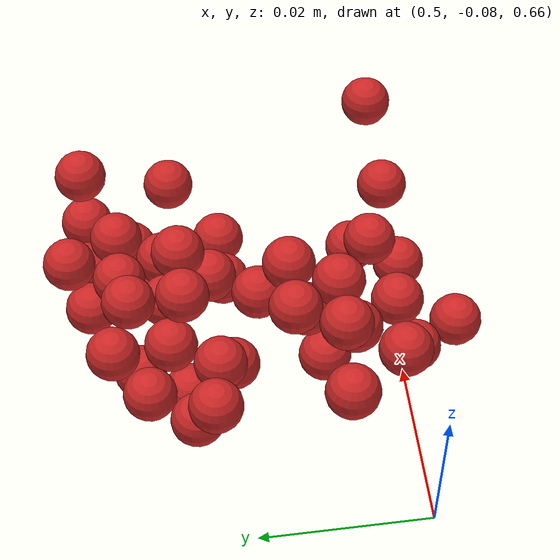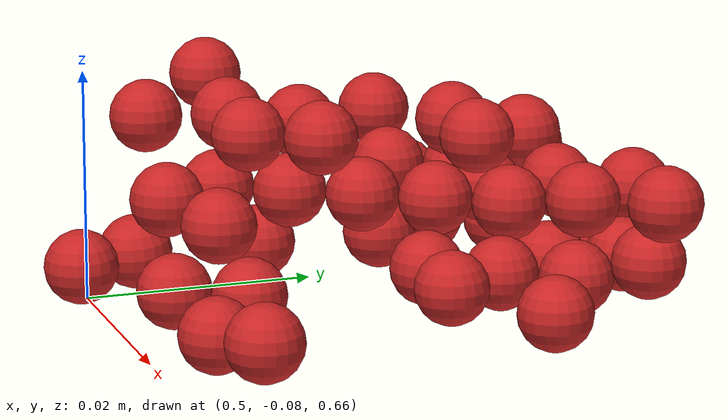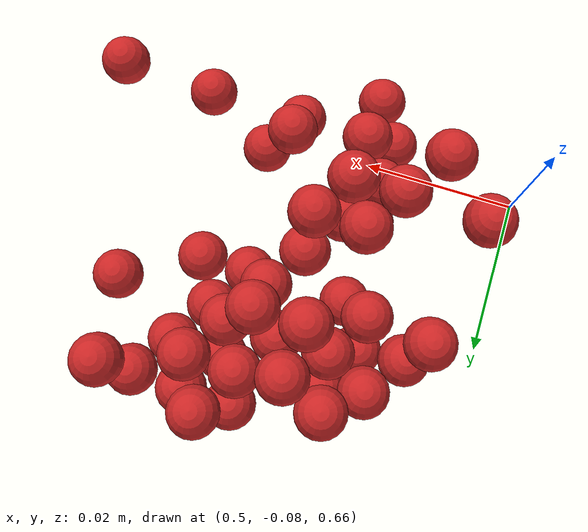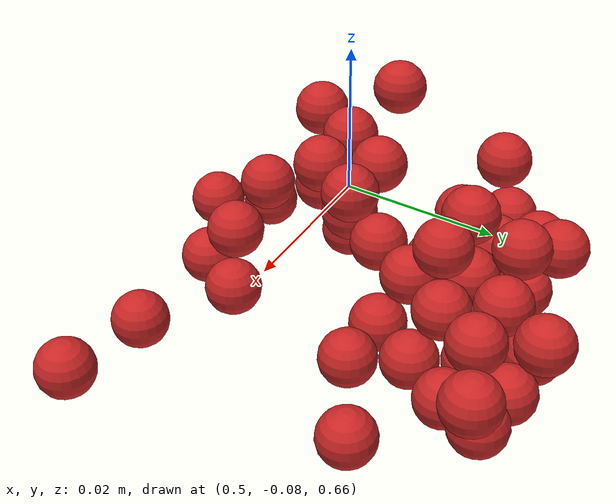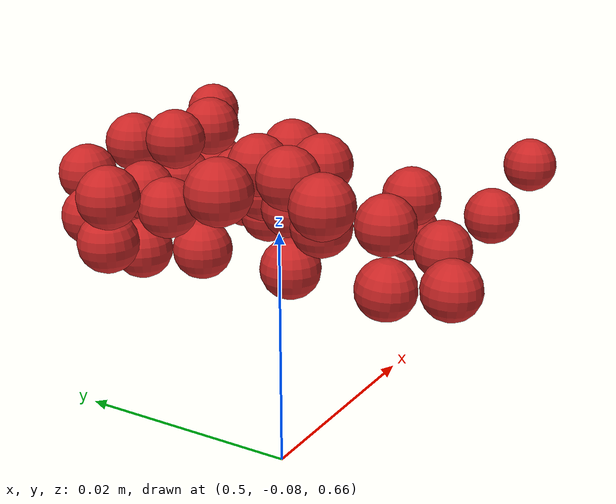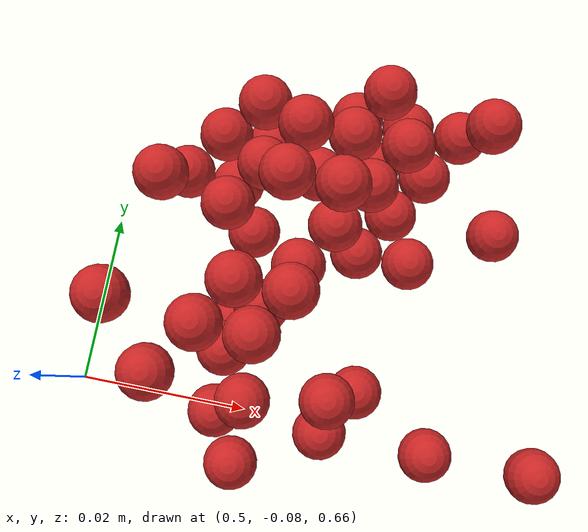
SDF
<sdf version="1.4">
 <world name="default">
  <model name="ground_plane">
   <static>1</static>
   <link name="link">
    <collision name="collision">
     <geometry><plane><normal>0 0 1</normal><size>100 100</size></plane></geometry>
     <surface><friction><ode><mu>100</mu><mu2>50</mu2></ode></friction></surface>
    </collision>
    <visual name="visual">
     <cast_shadows>0</cast_shadows>
     <geometry><plane><normal>0 0 1</normal><size>100 100</size></plane></geometry>
     <material>
      <script><uri>file://media/materials/scripts/gazebo.material</uri><name>Gazebo/Grey</name></script>
     </material>
    </visual>
    <velocity_decay><linear>0</linear><angular>0</angular></velocity_decay>
   </link>
  </model>
  <model name="sphere9">
   <pose>-0.024735 -0.022083 -0.054955 -0.002308 0.006572 -0.00148</pose>
   <link name="link">
    <pose>0.54676 -0.036781 0.732288 0 -0 0</pose>
    <inertial>
     <mass>0.0000001</mass>
     <inertia><ixx>0.00004</ixx><ixy>0</ixy><ixz>0</ixz><iyy>0.00004</iyy><iyz>0</iyz><izz>0.00004</izz></inertia>
    </inertial>
    <collision name="collision">
     <surface>
      <contact><ode><kp>1e+10</kp><kd>1</kd></ode></contact>
      <friction><ode><mu>0.01</mu><mu2>0.01</mu2></ode></friction>
     </surface>
     <geometry><sphere><radius>0.003</radius></sphere></geometry>
    </collision>
    <visual name="visual">
     <geometry><sphere><radius>0.003</radius></sphere></geometry>
     <material>
      <script><uri>file://media/materials/scripts/gazebo.material</uri><name>Gazebo/Red</name></script>
     </material>
    </visual>
    <velocity_decay><linear>0</linear><angular>0</angular></velocity_decay>
   </link>
   <static>0</static>
  </model>
  <model name="sphere21">
   <pose>-0.027115 -0.020637 -0.061463 -0.00017 0.005508 0.000319</pose>
   <link name="link">
    <pose>0.54676 -0.042781 0.738288 0 -0 0</pose>
    <inertial>
     <mass>0.0000001</mass>
     <inertia><ixx>0.00004</ixx><ixy>0</ixy><ixz>0</ixz><iyy>0.00004</iyy><iyz>0</iyz><izz>0.00004</izz></inertia>
    </inertial>
    <collision name="collision">
     <surface>
      <contact><ode><kp>1e+10</kp><kd>1</kd></ode></contact>
      <friction><ode><mu>0.01</mu><mu2>0.01</mu2></ode></friction>
     </surface>
     <geometry><sphere><radius>0.003</radius></sphere></geometry>
    </collision>
    <visual name="visual">
     <geometry><sphere><radius>0.003</radius></sphere></geometry>
     <material>
      <script><uri>file://media/materials/scripts/gazebo.material</uri><name>Gazebo/Red</name></script>
     </material>
    </visual>
    <velocity_decay><linear>0</linear><angular>0</angular></velocity_decay>
   </link>
   <static>0</static>
  </model>
  <model name="sphere22">
   <pose>-0.029571 -0.01944 -0.059918 -0.013692 0.009152 -0.001339</pose>
   <link name="link">
    <pose>0.55276 -0.042781 0.738288 0 -0 0</pose>
    <inertial>
     <mass>0.0000001</mass>
     <inertia><ixx>0.00004</ixx><ixy>0</ixy><ixz>0</ixz><iyy>0.00004</iyy><iyz>0</iyz><izz>0.00004</izz></inertia>
    </inertial>
    <collision name="collision">
     <surface>
      <contact><ode><kp>1e+10</kp><kd>1</kd></ode></contact>
      <friction><ode><mu>0.01</mu><mu2>0.01</mu2></ode></friction>
     </surface>
     <geometry><sphere><radius>0.003</radius></sphere></geometry>
    </collision>
    <visual name="visual">
     <geometry><sphere><radius>0.003</radius></sphere></geometry>
     <material>
      <script><uri>file://media/materials/scripts/gazebo.material</uri><name>Gazebo/Red</name></script>
     </material>
    </visual>
    <velocity_decay><linear>0</linear><angular>0</angular></velocity_decay>
   </link>
   <static>0</static>
  </model>
  <model name="sphere25">
   <pose>-0.027048 -0.023077 -0.061813 -0.000256 0.013666 -0.000145</pose>
   <link name="link">
    <pose>0.54676 -0.036781 0.738288 0 -0 0</pose>
    <inertial>
     <mass>0.0000001</mass>
     <inertia><ixx>0.00004</ixx><ixy>0</ixy><ixz>0</ixz><iyy>0.00004</iyy><iyz>0</iyz><izz>0.00004</izz></inertia>
    </inertial>
    <collision name="collision">
     <surface>
      <contact><ode><kp>1e+10</kp><kd>1</kd></ode></contact>
      <friction><ode><mu>0.01</mu><mu2>0.01</mu2></ode></friction>
     </surface>
     <geometry><sphere><radius>0.003</radius></sphere></geometry>
    </collision>
    <visual name="visual">
     <geometry><sphere><radius>0.003</radius></sphere></geometry>
     <material>
      <script><uri>file://media/materials/scripts/gazebo.material</uri><name>Gazebo/Red</name></script>
     </material>
    </visual>
    <velocity_decay><linear>0</linear><angular>0</angular></velocity_decay>
   </link>
   <static>0</static>
  </model>
  <model name="sphere26">
   <pose>-0.040076 -0.012608 -0.053665 0.006294 0.027587 -0.001008</pose>
   <link name="link">
    <pose>0.55276 -0.036781 0.738288 0 -0 0</pose>
    <inertial>
     <mass>0.0000001</mass>
     <inertia><ixx>0.00004</ixx><ixy>0</ixy><ixz>0</ixz><iyy>0.00004</iyy><iyz>0</iyz><izz>0.00004</izz></inertia>
    </inertial>
    <collision name="collision">
     <surface>
      <contact><ode><kp>1e+10</kp><kd>1</kd></ode></contact>
      <friction><ode><mu>0.01</mu><mu2>0.01</mu2></ode></friction>
     </surface>
     <geometry><sphere><radius>0.003</radius></sphere></geometry>
    </collision>
    <visual name="visual">
     <geometry><sphere><radius>0.003</radius></sphere></geometry>
     <material>
      <script><uri>file://media/materials/scripts/gazebo.material</uri><name>Gazebo/Red</name></script>
     </material>
    </visual>
    <velocity_decay><linear>0</linear><angular>0</angular></velocity_decay>
   </link>
   <static>0</static>
  </model>
  <model name="sphere27">
   <pose>-0.044037 0.026749 -0.052094 0.04819 0.024733 0.00225</pose>
   <link name="link">
    <pose>0.55876 -0.036781 0.738288 0 -0 0</pose>
    <inertial>
     <mass>0.0000001</mass>
     <inertia><ixx>0.00004</ixx><ixy>0</ixy><ixz>0</ixz><iyy>0.00004</iyy><iyz>0</iyz><izz>0.00004</izz></inertia>
    </inertial>
    <collision name="collision">
     <surface>
      <contact><ode><kp>1e+10</kp><kd>1</kd></ode></contact>
      <friction><ode><mu>0.01</mu><mu2>0.01</mu2></ode></friction>
     </surface>
     <geometry><sphere><radius>0.003</radius></sphere></geometry>
    </collision>
    <visual name="visual">
     <geometry><sphere><radius>0.003</radius></sphere></geometry>
     <material>
      <script><uri>file://media/materials/scripts/gazebo.material</uri><name>Gazebo/Red</name></script>
     </material>
    </visual>
    <velocity_decay><linear>0</linear><angular>0</angular></velocity_decay>
   </link>
   <static>0</static>
  </model>
  <model name="sphere30">
   <pose>-0.027193 -0.014303 -0.066022 0.006261 0.005783 0.000595</pose>
   <link name="link">
    <pose>0.55276 -0.030781 0.738288 0 -0 0</pose>
    <inertial>
     <mass>0.0000001</mass>
     <inertia><ixx>0.00004</ixx><ixy>0</ixy><ixz>0</ixz><iyy>0.00004</iyy><iyz>0</iyz><izz>0.00004</izz></inertia>
    </inertial>
    <collision name="collision">
     <surface>
      <contact><ode><kp>1e+10</kp><kd>1</kd></ode></contact>
      <friction><ode><mu>0.01</mu><mu2>0.01</mu2></ode></friction>
     </surface>
     <geometry><sphere><radius>0.003</radius></sphere></geometry>
    </collision>
    <visual name="visual">
     <geometry><sphere><radius>0.003</radius></sphere></geometry>
     <material>
      <script><uri>file://media/materials/scripts/gazebo.material</uri><name>Gazebo/Red</name></script>
     </material>
    </visual>
    <velocity_decay><linear>0</linear><angular>0</angular></velocity_decay>
   </link>
   <static>0</static>
  </model>
  <model name="sphere31">
   <pose>-0.019028 -0.020062 -0.072431 -0.002981 -0.005194 -0.001456</pose>
   <link name="link">
    <pose>0.55876 -0.030781 0.738288 0 -0 0</pose>
    <inertial>
     <mass>0.0000001</mass>
     <inertia><ixx>0.00004</ixx><ixy>0</ixy><ixz>0</ixz><iyy>0.00004</iyy><iyz>0</iyz><izz>0.00004</izz></inertia>
    </inertial>
    <collision name="collision">
     <surface>
      <contact><ode><kp>1e+10</kp><kd>1</kd></ode></contact>
      <friction><ode><mu>0.01</mu><mu2>0.01</mu2></ode></friction>
     </surface>
     <geometry><sphere><radius>0.003</radius></sphere></geometry>
    </collision>
    <visual name="visual">
     <geometry><sphere><radius>0.003</radius></sphere></geometry>
     <material>
      <script><uri>file://media/materials/scripts/gazebo.material</uri><name>Gazebo/Red</name></script>
     </material>
    </visual>
    <velocity_decay><linear>0</linear><angular>0</angular></velocity_decay>
   </link>
   <static>0</static>
  </model>
  <model name="sphere43">
   <pose>-0.023192 0.002094 -0.073564 0.032821 0.000334 -0.001341</pose>
   <link name="link">
    <pose>0.55876 -0.036781 0.744288 0 -0 0</pose>
    <inertial>
     <mass>0.0000001</mass>
     <inertia><ixx>0.00004</ixx><ixy>0</ixy><ixz>0</ixz><iyy>0.00004</iyy><iyz>0</iyz><izz>0.00004</izz></inertia>
    </inertial>
    <collision name="collision">
     <surface>
      <contact><ode><kp>1e+10</kp><kd>1</kd></ode></contact>
      <friction><ode><mu>0.01</mu><mu2>0.01</mu2></ode></friction>
     </surface>
     <geometry><sphere><radius>0.003</radius></sphere></geometry>
    </collision>
    <visual name="visual">
     <geometry><sphere><radius>0.003</radius></sphere></geometry>
     <material>
      <script><uri>file://media/materials/scripts/gazebo.material</uri><name>Gazebo/Red</name></script>
     </material>
    </visual>
    <velocity_decay><linear>0</linear><angular>0</angular></velocity_decay>
   </link>
   <static>0</static>
  </model>
  <model name="sphere46">
   <pose>-0.023447 -0.02005 -0.083495 0.011798 -0.015465 -2e-05</pose>
   <link name="link">
    <pose>0.55276 -0.030781 0.744288 0 -0 0</pose>
    <inertial>
     <mass>0.0000001</mass>
     <inertia><ixx>0.00004</ixx><ixy>0</ixy><ixz>0</ixz><iyy>0.00004</iyy><iyz>0</iyz><izz>0.00004</izz></inertia>
    </inertial>
    <collision name="collision">
     <surface>
      <contact><ode><kp>1e+10</kp><kd>1</kd></ode></contact>
      <friction><ode><mu>0.01</mu><mu2>0.01</mu2></ode></friction>
     </surface>
     <geometry><sphere><radius>0.003</radius></sphere></geometry>
    </collision>
    <visual name="visual">
     <geometry><sphere><radius>0.003</radius></sphere></geometry>
     <material>
      <script><uri>file://media/materials/scripts/gazebo.material</uri><name>Gazebo/Red</name></script>
     </material>
    </visual>
    <velocity_decay><linear>0</linear><angular>0</angular></velocity_decay>
   </link>
   <static>0</static>
  </model>
  <model name="sphere48">
   <pose>-0.018416 -0.028248 -0.073983 -0.00455 0.013871 -0.003185</pose>
   <link name="link">
    <pose>0.54076 -0.048781 0.750288 0 -0 0</pose>
    <inertial>
     <mass>0.0000001</mass>
     <inertia><ixx>0.00004</ixx><ixy>0</ixy><ixz>0</ixz><iyy>0.00004</iyy><iyz>0</iyz><izz>0.00004</izz></inertia>
    </inertial>
    <collision name="collision">
     <surface>
      <contact><ode><kp>1e+10</kp><kd>1</kd></ode></contact>
      <friction><ode><mu>0.01</mu><mu2>0.01</mu2></ode></friction>
     </surface>
     <geometry><sphere><radius>0.003</radius></sphere></geometry>
    </collision>
    <visual name="visual">
     <geometry><sphere><radius>0.003</radius></sphere></geometry>
     <material>
      <script><uri>file://media/materials/scripts/gazebo.material</uri><name>Gazebo/Red</name></script>
     </material>
    </visual>
    <velocity_decay><linear>0</linear><angular>0</angular></velocity_decay>
   </link>
   <static>0</static>
  </model>
  <model name="sphere51">
   <pose>-0.031297 0.012564 -0.066682 0.021963 0.023638 -0.003572</pose>
   <link name="link">
    <pose>0.55876 -0.048781 0.750288 0 -0 0</pose>
    <inertial>
     <mass>0.0000001</mass>
     <inertia><ixx>0.00004</ixx><ixy>0</ixy><ixz>0</ixz><iyy>0.00004</iyy><iyz>0</iyz><izz>0.00004</izz></inertia>
    </inertial>
    <collision name="collision">
     <surface>
      <contact><ode><kp>1e+10</kp><kd>1</kd></ode></contact>
      <friction><ode><mu>0.01</mu><mu2>0.01</mu2></ode></friction>
     </surface>
     <geometry><sphere><radius>0.003</radius></sphere></geometry>
    </collision>
    <visual name="visual">
     <geometry><sphere><radius>0.003</radius></sphere></geometry>
     <material>
      <script><uri>file://media/materials/scripts/gazebo.material</uri><name>Gazebo/Red</name></script>
     </material>
    </visual>
    <velocity_decay><linear>0</linear><angular>0</angular></velocity_decay>
   </link>
   <static>0</static>
  </model>
  <model name="sphere52">
   <pose>-0.020852 -0.022577 -0.074595 0.008012 -0.006928 -0.000591</pose>
   <link name="link">
    <pose>0.54076 -0.042781 0.750288 0 -0 0</pose>
    <inertial>
     <mass>0.0000001</mass>
     <inertia><ixx>0.00004</ixx><ixy>0</ixy><ixz>0</ixz><iyy>0.00004</iyy><iyz>0</iyz><izz>0.00004</izz></inertia>
    </inertial>
    <collision name="collision">
     <surface>
      <contact><ode><kp>1e+10</kp><kd>1</kd></ode></contact>
      <friction><ode><mu>0.01</mu><mu2>0.01</mu2></ode></friction>
     </surface>
     <geometry><sphere><radius>0.003</radius></sphere></geometry>
    </collision>
    <visual name="visual">
     <geometry><sphere><radius>0.003</radius></sphere></geometry>
     <material>
      <script><uri>file://media/materials/scripts/gazebo.material</uri><name>Gazebo/Red</name></script>
     </material>
    </visual>
    <velocity_decay><linear>0</linear><angular>0</angular></velocity_decay>
   </link>
   <static>0</static>
  </model>
  <model name="sphere55">
   <pose>-0.02331 0.003861 -0.081444 0.020107 -0.012016 0.011433</pose>
   <link name="link">
    <pose>0.55876 -0.042781 0.750288 0 -0 0</pose>
    <inertial>
     <mass>0.0000001</mass>
     <inertia><ixx>0.00004</ixx><ixy>0</ixy><ixz>0</ixz><iyy>0.00004</iyy><iyz>0</iyz><izz>0.00004</izz></inertia>
    </inertial>
    <collision name="collision">
     <surface>
      <contact><ode><kp>1e+10</kp><kd>1</kd></ode></contact>
      <friction><ode><mu>0.01</mu><mu2>0.01</mu2></ode></friction>
     </surface>
     <geometry><sphere><radius>0.003</radius></sphere></geometry>
    </collision>
    <visual name="visual">
     <geometry><sphere><radius>0.003</radius></sphere></geometry>
     <material>
      <script><uri>file://media/materials/scripts/gazebo.material</uri><name>Gazebo/Red</name></script>
     </material>
    </visual>
    <velocity_decay><linear>0</linear><angular>0</angular></velocity_decay>
   </link>
   <static>0</static>
  </model>
  <model name="sphere56">
   <pose>-0.030248 -0.027456 -0.075916 0.006583 0.009606 -0.00153</pose>
   <link name="link">
    <pose>0.54076 -0.036781 0.750288 0 -0 0</pose>
    <inertial>
     <mass>0.0000001</mass>
     <inertia><ixx>0.00004</ixx><ixy>0</ixy><ixz>0</ixz><iyy>0.00004</iyy><iyz>0</iyz><izz>0.00004</izz></inertia>
    </inertial>
    <collision name="collision">
     <surface>
      <contact><ode><kp>1e+10</kp><kd>1</kd></ode></contact>
      <friction><ode><mu>0.01</mu><mu2>0.01</mu2></ode></friction>
     </surface>
     <geometry><sphere><radius>0.003</radius></sphere></geometry>
    </collision>
    <visual name="visual">
     <geometry><sphere><radius>0.003</radius></sphere></geometry>
     <material>
      <script><uri>file://media/materials/scripts/gazebo.material</uri><name>Gazebo/Red</name></script>
     </material>
    </visual>
    <velocity_decay><linear>0</linear><angular>0</angular></velocity_decay>
   </link>
   <static>0</static>
  </model>
  <model name="sphere57">
   <pose>-0.045665 -0.025322 -0.066532 0.000421 0.006232 -0.015106</pose>
   <link name="link">
    <pose>0.54676 -0.036781 0.750288 0 -0 0</pose>
    <inertial>
     <mass>0.0000001</mass>
     <inertia><ixx>0.00004</ixx><ixy>0</ixy><ixz>0</ixz><iyy>0.00004</iyy><iyz>0</iyz><izz>0.00004</izz></inertia>
    </inertial>
    <collision name="collision">
     <surface>
      <contact><ode><kp>1e+10</kp><kd>1</kd></ode></contact>
      <friction><ode><mu>0.01</mu><mu2>0.01</mu2></ode></friction>
     </surface>
     <geometry><sphere><radius>0.003</radius></sphere></geometry>
    </collision>
    <visual name="visual">
     <geometry><sphere><radius>0.003</radius></sphere></geometry>
     <material>
      <script><uri>file://media/materials/scripts/gazebo.material</uri><name>Gazebo/Red</name></script>
     </material>
    </visual>
    <velocity_decay><linear>0</linear><angular>0</angular></velocity_decay>
   </link>
   <static>0</static>
  </model>
  <model name="sphere61">
   <pose>-0.026725 -0.022684 -0.070927 0.002268 0.001015 0.001369</pose>
   <link name="link">
    <pose>0.54676 -0.030781 0.750288 0 -0 0</pose>
    <inertial>
     <mass>0.0000001</mass>
     <inertia><ixx>0.00004</ixx><ixy>0</ixy><ixz>0</ixz><iyy>0.00004</iyy><iyz>0</iyz><izz>0.00004</izz></inertia>
    </inertial>
    <collision name="collision">
     <surface>
      <contact><ode><kp>1e+10</kp><kd>1</kd></ode></contact>
      <friction><ode><mu>0.01</mu><mu2>0.01</mu2></ode></friction>
     </surface>
     <geometry><sphere><radius>0.003</radius></sphere></geometry>
    </collision>
    <visual name="visual">
     <geometry><sphere><radius>0.003</radius></sphere></geometry>
     <material>
      <script><uri>file://media/materials/scripts/gazebo.material</uri><name>Gazebo/Red</name></script>
     </material>
    </visual>
    <velocity_decay><linear>0</linear><angular>0</angular></velocity_decay>
   </link>
   <static>0</static>
  </model>
  <model name="sphere63">
   <pose>-0.041565 0.001599 -0.062868 0.024453 0.021337 -0.000514</pose>
   <link name="link">
    <pose>0.55876 -0.030781 0.750288 0 -0 0</pose>
    <inertial>
     <mass>0.0000001</mass>
     <inertia><ixx>0.00004</ixx><ixy>0</ixy><ixz>0</ixz><iyy>0.00004</iyy><iyz>0</iyz><izz>0.00004</izz></inertia>
    </inertial>
    <collision name="collision">
     <surface>
      <contact><ode><kp>1e+10</kp><kd>1</kd></ode></contact>
      <friction><ode><mu>0.01</mu><mu2>0.01</mu2></ode></friction>
     </surface>
     <geometry><sphere><radius>0.003</radius></sphere></geometry>
    </collision>
    <visual name="visual">
     <geometry><sphere><radius>0.003</radius></sphere></geometry>
     <material>
      <script><uri>file://media/materials/scripts/gazebo.material</uri><name>Gazebo/Red</name></script>
     </material>
    </visual>
    <velocity_decay><linear>0</linear><angular>0</angular></velocity_decay>
   </link>
   <static>0</static>
  </model>
  <model name="sphere67">
   <pose>-0.031588 -0.025911 -0.076233 -0.000587 0.019844 -0.011201</pose>
   <link name="link">
    <pose>0.55876 -0.048781 0.756288 0 -0 0</pose>
    <inertial>
     <mass>0.0000001</mass>
     <inertia><ixx>0.00004</ixx><ixy>0</ixy><ixz>0</ixz><iyy>0.00004</iyy><iyz>0</iyz><izz>0.00004</izz></inertia>
    </inertial>
    <collision name="collision">
     <surface>
      <contact><ode><kp>1e+10</kp><kd>1</kd></ode></contact>
      <friction><ode><mu>0.01</mu><mu2>0.01</mu2></ode></friction>
     </surface>
     <geometry><sphere><radius>0.003</radius></sphere></geometry>
    </collision>
    <visual name="visual">
     <geometry><sphere><radius>0.003</radius></sphere></geometry>
     <material>
      <script><uri>file://media/materials/scripts/gazebo.material</uri><name>Gazebo/Red</name></script>
     </material>
    </visual>
    <velocity_decay><linear>0</linear><angular>0</angular></velocity_decay>
   </link>
   <static>0</static>
  </model>
  <model name="sphere68">
   <pose>-0.034055 0.021045 -0.073847 0.078407 0.014327 0.000828</pose>
   <link name="link">
    <pose>0.54076 -0.042781 0.756288 0 -0 0</pose>
    <inertial>
     <mass>0.0000001</mass>
     <inertia><ixx>0.00004</ixx><ixy>0</ixy><ixz>0</ixz><iyy>0.00004</iyy><iyz>0</iyz><izz>0.00004</izz></inertia>
    </inertial>
    <collision name="collision">
     <surface>
      <contact><ode><kp>1e+10</kp><kd>1</kd></ode></contact>
      <friction><ode><mu>0.01</mu><mu2>0.01</mu2></ode></friction>
     </surface>
     <geometry><sphere><radius>0.003</radius></sphere></geometry>
    </collision>
    <visual name="visual">
     <geometry><sphere><radius>0.003</radius></sphere></geometry>
     <material>
      <script><uri>file://media/materials/scripts/gazebo.material</uri><name>Gazebo/Red</name></script>
     </material>
    </visual>
    <velocity_decay><linear>0</linear><angular>0</angular></velocity_decay>
   </link>
   <static>0</static>
  </model>
  <model name="sphere69">
   <pose>-0.029331 -0.025057 -0.080067 -1.8e-05 0.004358 -0.000853</pose>
   <link name="link">
    <pose>0.54676 -0.042781 0.756288 0 -0 0</pose>
    <inertial>
     <mass>0.0000001</mass>
     <inertia><ixx>0.00004</ixx><ixy>0</ixy><ixz>0</ixz><iyy>0.00004</iyy><iyz>0</iyz><izz>0.00004</izz></inertia>
    </inertial>
    <collision name="collision">
     <surface>
      <contact><ode><kp>1e+10</kp><kd>1</kd></ode></contact>
      <friction><ode><mu>0.01</mu><mu2>0.01</mu2></ode></friction>
     </surface>
     <geometry><sphere><radius>0.003</radius></sphere></geometry>
    </collision>
    <visual name="visual">
     <geometry><sphere><radius>0.003</radius></sphere></geometry>
     <material>
      <script><uri>file://media/materials/scripts/gazebo.material</uri><name>Gazebo/Red</name></script>
     </material>
    </visual>
    <velocity_decay><linear>0</linear><angular>0</angular></velocity_decay>
   </link>
   <static>0</static>
  </model>
  <model name="sphere75">
   <pose>-0.023063 -0.005103 -0.075879 -0.012644 0.00879 -0.021376</pose>
   <link name="link">
    <pose>0.55876 -0.036781 0.756288 0 -0 0</pose>
    <inertial>
     <mass>0.0000001</mass>
     <inertia><ixx>0.00004</ixx><ixy>0</ixy><ixz>0</ixz><iyy>0.00004</iyy><iyz>0</iyz><izz>0.00004</izz></inertia>
    </inertial>
    <collision name="collision">
     <surface>
      <contact><ode><kp>1e+10</kp><kd>1</kd></ode></contact>
      <friction><ode><mu>0.01</mu><mu2>0.01</mu2></ode></friction>
     </surface>
     <geometry><sphere><radius>0.003</radius></sphere></geometry>
    </collision>
    <visual name="visual">
     <geometry><sphere><radius>0.003</radius></sphere></geometry>
     <material>
      <script><uri>file://media/materials/scripts/gazebo.material</uri><name>Gazebo/Red</name></script>
     </material>
    </visual>
    <velocity_decay><linear>0</linear><angular>0</angular></velocity_decay>
   </link>
   <static>0</static>
  </model>
  <model name="sphere84">
   <pose>-0.02181 -0.019121 -0.088664 0.015356 -0.001749 0.000265</pose>
   <link name="link">
    <pose>0.54076 -0.042781 0.762288 0 -0 0</pose>
    <inertial>
     <mass>0.0000001</mass>
     <inertia><ixx>0.00004</ixx><ixy>0</ixy><ixz>0</ixz><iyy>0.00004</iyy><iyz>0</iyz><izz>0.00004</izz></inertia>
    </inertial>
    <collision name="collision">
     <surface>
      <contact><ode><kp>1e+10</kp><kd>1</kd></ode></contact>
      <friction><ode><mu>0.01</mu><mu2>0.01</mu2></ode></friction>
     </surface>
     <geometry><sphere><radius>0.003</radius></sphere></geometry>
    </collision>
    <visual name="visual">
     <geometry><sphere><radius>0.003</radius></sphere></geometry>
     <material>
      <script><uri>file://media/materials/scripts/gazebo.material</uri><name>Gazebo/Red</name></script>
     </material>
    </visual>
    <velocity_decay><linear>0</linear><angular>0</angular></velocity_decay>
   </link>
   <static>0</static>
  </model>
  <model name="sphere91">
   <pose>-0.036239 -0.017743 -0.087595 -0.003226 0.001798 -0.001217</pose>
   <link name="link">
    <pose>0.55876 -0.036781 0.762288 0 -0 0</pose>
    <inertial>
     <mass>0.0000001</mass>
     <inertia><ixx>0.00004</ixx><ixy>0</ixy><ixz>0</ixz><iyy>0.00004</iyy><iyz>0</iyz><izz>0.00004</izz></inertia>
    </inertial>
    <collision name="collision">
     <surface>
      <contact><ode><kp>1e+10</kp><kd>1</kd></ode></contact>
      <friction><ode><mu>0.01</mu><mu2>0.01</mu2></ode></friction>
     </surface>
     <geometry><sphere><radius>0.003</radius></sphere></geometry>
    </collision>
    <visual name="visual">
     <geometry><sphere><radius>0.003</radius></sphere></geometry>
     <material>
      <script><uri>file://media/materials/scripts/gazebo.material</uri><name>Gazebo/Red</name></script>
     </material>
    </visual>
    <velocity_decay><linear>0</linear><angular>0</angular></velocity_decay>
   </link>
   <static>0</static>
  </model>
  <model name="sphere93">
   <pose>-0.032516 -0.015477 -0.091054 -3.3e-05 -0.001671 -0.00654</pose>
   <link name="link">
    <pose>0.54676 -0.030781 0.762288 0 -0 0</pose>
    <inertial>
     <mass>0.0000001</mass>
     <inertia><ixx>0.00004</ixx><ixy>0</ixy><ixz>0</ixz><iyy>0.00004</iyy><iyz>0</iyz><izz>0.00004</izz></inertia>
    </inertial>
    <collision name="collision">
     <surface>
      <contact><ode><kp>1e+10</kp><kd>1</kd></ode></contact>
      <friction><ode><mu>0.01</mu><mu2>0.01</mu2></ode></friction>
     </surface>
     <geometry><sphere><radius>0.003</radius></sphere></geometry>
    </collision>
    <visual name="visual">
     <geometry><sphere><radius>0.003</radius></sphere></geometry>
     <material>
      <script><uri>file://media/materials/scripts/gazebo.material</uri><name>Gazebo/Red</name></script>
     </material>
    </visual>
    <velocity_decay><linear>0</linear><angular>0</angular></velocity_decay>
   </link>
   <static>0</static>
  </model>
  <model name="sphere94">
   <pose>-0.051037 -0.015527 -0.08112 0.00998 0.020933 0.008528</pose>
   <link name="link">
    <pose>0.55276 -0.030781 0.762288 0 -0 0</pose>
    <inertial>
     <mass>0.0000001</mass>
     <inertia><ixx>0.00004</ixx><ixy>0</ixy><ixz>0</ixz><iyy>0.00004</iyy><iyz>0</iyz><izz>0.00004</izz></inertia>
    </inertial>
    <collision name="collision">
     <surface>
      <contact><ode><kp>1e+10</kp><kd>1</kd></ode></contact>
      <friction><ode><mu>0.01</mu><mu2>0.01</mu2></ode></friction>
     </surface>
     <geometry><sphere><radius>0.003</radius></sphere></geometry>
    </collision>
    <visual name="visual">
     <geometry><sphere><radius>0.003</radius></sphere></geometry>
     <material>
      <script><uri>file://media/materials/scripts/gazebo.material</uri><name>Gazebo/Red</name></script>
     </material>
    </visual>
    <velocity_decay><linear>0</linear><angular>0</angular></velocity_decay>
   </link>
   <static>0</static>
  </model>
  <model name="sphere95">
   <pose>-0.029285 0.004536 -0.089363 0.041336 -0.011508 0.016842</pose>
   <link name="link">
    <pose>0.55876 -0.030781 0.762288 0 -0 0</pose>
    <inertial>
     <mass>0.0000001</mass>
     <inertia><ixx>0.00004</ixx><ixy>0</ixy><ixz>0</ixz><iyy>0.00004</iyy><iyz>0</iyz><izz>0.00004</izz></inertia>
    </inertial>
    <collision name="collision">
     <surface>
      <contact><ode><kp>1e+10</kp><kd>1</kd></ode></contact>
      <friction><ode><mu>0.01</mu><mu2>0.01</mu2></ode></friction>
     </surface>
     <geometry><sphere><radius>0.003</radius></sphere></geometry>
    </collision>
    <visual name="visual">
     <geometry><sphere><radius>0.003</radius></sphere></geometry>
     <material>
      <script><uri>file://media/materials/scripts/gazebo.material</uri><name>Gazebo/Red</name></script>
     </material>
    </visual>
    <velocity_decay><linear>0</linear><angular>0</angular></velocity_decay>
   </link>
   <static>0</static>
  </model>
  <model name="sphere96">
   <pose>-0.030867 -0.01867 -0.084244 0.015798 0.025908 -0.00171</pose>
   <link name="link">
    <pose>0.54076 -0.048781 0.768288 0 -0 0</pose>
    <inertial>
     <mass>0.0000001</mass>
     <inertia><ixx>0.00004</ixx><ixy>0</ixy><ixz>0</ixz><iyy>0.00004</iyy><iyz>0</iyz><izz>0.00004</izz></inertia>
    </inertial>
    <collision name="collision">
     <surface>
      <contact><ode><kp>1e+10</kp><kd>1</kd></ode></contact>
      <friction><ode><mu>0.01</mu><mu2>0.01</mu2></ode></friction>
     </surface>
     <geometry><sphere><radius>0.003</radius></sphere></geometry>
    </collision>
    <visual name="visual">
     <geometry><sphere><radius>0.003</radius></sphere></geometry>
     <material>
      <script><uri>file://media/materials/scripts/gazebo.material</uri><name>Gazebo/Red</name></script>
     </material>
    </visual>
    <velocity_decay><linear>0</linear><angular>0</angular></velocity_decay>
   </link>
   <static>0</static>
  </model>
  <model name="sphere105">
   <pose>-0.036014 -0.020122 -0.09658 -0.00285 0.005276 0.000538</pose>
   <link name="link">
    <pose>0.54676 -0.036781 0.768288 0 -0 0</pose>
    <inertial>
     <mass>0.0000001</mass>
     <inertia><ixx>0.00004</ixx><ixy>0</ixy><ixz>0</ixz><iyy>0.00004</iyy><iyz>0</iyz><izz>0.00004</izz></inertia>
    </inertial>
    <collision name="collision">
     <surface>
      <contact><ode><kp>1e+10</kp><kd>1</kd></ode></contact>
      <friction><ode><mu>0.01</mu><mu2>0.01</mu2></ode></friction>
     </surface>
     <geometry><sphere><radius>0.003</radius></sphere></geometry>
    </collision>
    <visual name="visual">
     <geometry><sphere><radius>0.003</radius></sphere></geometry>
     <material>
      <script><uri>file://media/materials/scripts/gazebo.material</uri><name>Gazebo/Red</name></script>
     </material>
    </visual>
    <velocity_decay><linear>0</linear><angular>0</angular></velocity_decay>
   </link>
   <static>0</static>
  </model>
  <model name="sphere109">
   <pose>-0.020678 -0.026348 -0.089151 -0.002793 0.000953 0.00088</pose>
   <link name="link">
    <pose>0.54676 -0.030781 0.768288 0 -0 0</pose>
    <inertial>
     <mass>0.0000001</mass>
     <inertia><ixx>0.00004</ixx><ixy>0</ixy><ixz>0</ixz><iyy>0.00004</iyy><iyz>0</iyz><izz>0.00004</izz></inertia>
    </inertial>
    <collision name="collision">
     <surface>
      <contact><ode><kp>1e+10</kp><kd>1</kd></ode></contact>
      <friction><ode><mu>0.01</mu><mu2>0.01</mu2></ode></friction>
     </surface>
     <geometry><sphere><radius>0.003</radius></sphere></geometry>
    </collision>
    <visual name="visual">
     <geometry><sphere><radius>0.003</radius></sphere></geometry>
     <material>
      <script><uri>file://media/materials/scripts/gazebo.material</uri><name>Gazebo/Red</name></script>
     </material>
    </visual>
    <velocity_decay><linear>0</linear><angular>0</angular></velocity_decay>
   </link>
   <static>0</static>
  </model>
  <model name="sphere110">
   <pose>-0.035069 -0.024767 -0.094458 -0.003539 0.000137 0.00026</pose>
   <link name="link">
    <pose>0.55276 -0.030781 0.768288 0 -0 0</pose>
    <inertial>
     <mass>0.0000001</mass>
     <inertia><ixx>0.00004</ixx><ixy>0</ixy><ixz>0</ixz><iyy>0.00004</iyy><iyz>0</iyz><izz>0.00004</izz></inertia>
    </inertial>
    <collision name="collision">
     <surface>
      <contact><ode><kp>1e+10</kp><kd>1</kd></ode></contact>
      <friction><ode><mu>0.01</mu><mu2>0.01</mu2></ode></friction>
     </surface>
     <geometry><sphere><radius>0.003</radius></sphere></geometry>
    </collision>
    <visual name="visual">
     <geometry><sphere><radius>0.003</radius></sphere></geometry>
     <material>
      <script><uri>file://media/materials/scripts/gazebo.material</uri><name>Gazebo/Red</name></script>
     </material>
    </visual>
    <velocity_decay><linear>0</linear><angular>0</angular></velocity_decay>
   </link>
   <static>0</static>
  </model>
  <model name="sphere111">
   <pose>-0.046722 -0.013745 -0.08988 -0.012598 0.006757 -0.02018</pose>
   <link name="link">
    <pose>0.55876 -0.030781 0.768288 0 -0 0</pose>
    <inertial>
     <mass>0.0000001</mass>
     <inertia><ixx>0.00004</ixx><ixy>0</ixy><ixz>0</ixz><iyy>0.00004</iyy><iyz>0</iyz><izz>0.00004</izz></inertia>
    </inertial>
    <collision name="collision">
     <surface>
      <contact><ode><kp>1e+10</kp><kd>1</kd></ode></contact>
      <friction><ode><mu>0.01</mu><mu2>0.01</mu2></ode></friction>
     </surface>
     <geometry><sphere><radius>0.003</radius></sphere></geometry>
    </collision>
    <visual name="visual">
     <geometry><sphere><radius>0.003</radius></sphere></geometry>
     <material>
      <script><uri>file://media/materials/scripts/gazebo.material</uri><name>Gazebo/Red</name></script>
     </material>
    </visual>
    <velocity_decay><linear>0</linear><angular>0</angular></velocity_decay>
   </link>
   <static>0</static>
  </model>
  <model name="sphere113">
   <pose>-0.027089 -0.027294 -0.099494 0.00237 0.001403 -0.001239</pose>
   <link name="link">
    <pose>0.54676 -0.048781 0.774288 0 -0 0</pose>
    <inertial>
     <mass>0.0000001</mass>
     <inertia><ixx>0.00004</ixx><ixy>0</ixy><ixz>0</ixz><iyy>0.00004</iyy><iyz>0</iyz><izz>0.00004</izz></inertia>
    </inertial>
    <collision name="collision">
     <surface>
      <contact><ode><kp>1e+10</kp><kd>1</kd></ode></contact>
      <friction><ode><mu>0.01</mu><mu2>0.01</mu2></ode></friction>
     </surface>
     <geometry><sphere><radius>0.003</radius></sphere></geometry>
    </collision>
    <visual name="visual">
     <geometry><sphere><radius>0.003</radius></sphere></geometry>
     <material>
      <script><uri>file://media/materials/scripts/gazebo.material</uri><name>Gazebo/Red</name></script>
     </material>
    </visual>
    <velocity_decay><linear>0</linear><angular>0</angular></velocity_decay>
   </link>
   <static>0</static>
  </model>
  <model name="sphere123">
   <pose>-0.023085 -0.009626 -0.101515 -0.009967 0.004578 -0.010448</pose>
   <link name="link">
    <pose>0.55876 -0.036781 0.774288 0 -0 0</pose>
    <inertial>
     <mass>0.0000001</mass>
     <inertia><ixx>0.00004</ixx><ixy>0</ixy><ixz>0</ixz><iyy>0.00004</iyy><iyz>0</iyz><izz>0.00004</izz></inertia>
    </inertial>
    <collision name="collision">
     <surface>
      <contact><ode><kp>1e+10</kp><kd>1</kd></ode></contact>
      <friction><ode><mu>0.01</mu><mu2>0.01</mu2></ode></friction>
     </surface>
     <geometry><sphere><radius>0.003</radius></sphere></geometry>
    </collision>
    <visual name="visual">
     <geometry><sphere><radius>0.003</radius></sphere></geometry>
     <material>
      <script><uri>file://media/materials/scripts/gazebo.material</uri><name>Gazebo/Red</name></script>
     </material>
    </visual>
    <velocity_decay><linear>0</linear><angular>0</angular></velocity_decay>
   </link>
   <static>0</static>
  </model>
  <model name="sphere127">
   <pose>-0.033793 -0.011312 -0.096277 -0.001996 0.006592 -0.002964</pose>
   <link name="link">
    <pose>0.55876 -0.030781 0.774288 0 -0 0</pose>
    <inertial>
     <mass>0.0000001</mass>
     <inertia><ixx>0.00004</ixx><ixy>0</ixy><ixz>0</ixz><iyy>0.00004</iyy><iyz>0</iyz><izz>0.00004</izz></inertia>
    </inertial>
    <collision name="collision">
     <surface>
      <contact><ode><kp>1e+10</kp><kd>1</kd></ode></contact>
      <friction><ode><mu>0.01</mu><mu2>0.01</mu2></ode></friction>
     </surface>
     <geometry><sphere><radius>0.003</radius></sphere></geometry>
    </collision>
    <visual name="visual">
     <geometry><sphere><radius>0.003</radius></sphere></geometry>
     <material>
      <script><uri>file://media/materials/scripts/gazebo.material</uri><name>Gazebo/Red</name></script>
     </material>
    </visual>
    <velocity_decay><linear>0</linear><angular>0</angular></velocity_decay>
   </link>
   <static>0</static>
  </model>
  <model name="sphere130">
   <pose>-0.023506 -0.027731 -0.106178 0.000363 0.00037 -0.00016</pose>
   <link name="link">
    <pose>0.55276 -0.048781 0.780288 0 -0 0</pose>
    <inertial>
     <mass>0.0000001</mass>
     <inertia><ixx>0.00004</ixx><ixy>0</ixy><ixz>0</ixz><iyy>0.00004</iyy><iyz>0</iyz><izz>0.00004</izz></inertia>
    </inertial>
    <collision name="collision">
     <surface>
      <contact><ode><kp>1e+10</kp><kd>1</kd></ode></contact>
      <friction><ode><mu>0.01</mu><mu2>0.01</mu2></ode></friction>
     </surface>
     <geometry><sphere><radius>0.003</radius></sphere></geometry>
    </collision>
    <visual name="visual">
     <geometry><sphere><radius>0.003</radius></sphere></geometry>
     <material>
      <script><uri>file://media/materials/scripts/gazebo.material</uri><name>Gazebo/Red</name></script>
     </material>
    </visual>
    <velocity_decay><linear>0</linear><angular>0</angular></velocity_decay>
   </link>
   <static>0</static>
  </model>
  <model name="sphere131">
   <pose>-0.02632 -0.017376 -0.092717 -0.00243 0.028349 -0.02788</pose>
   <link name="link">
    <pose>0.55876 -0.048781 0.780288 0 -0 0</pose>
    <inertial>
     <mass>0.0000001</mass>
     <inertia><ixx>0.00004</ixx><ixy>0</ixy><ixz>0</ixz><iyy>0.00004</iyy><iyz>0</iyz><izz>0.00004</izz></inertia>
    </inertial>
    <collision name="collision">
     <surface>
      <contact><ode><kp>1e+10</kp><kd>1</kd></ode></contact>
      <friction><ode><mu>0.01</mu><mu2>0.01</mu2></ode></friction>
     </surface>
     <geometry><sphere><radius>0.003</radius></sphere></geometry>
    </collision>
    <visual name="visual">
     <geometry><sphere><radius>0.003</radius></sphere></geometry>
     <material>
      <script><uri>file://media/materials/scripts/gazebo.material</uri><name>Gazebo/Red</name></script>
     </material>
    </visual>
    <velocity_decay><linear>0</linear><angular>0</angular></velocity_decay>
   </link>
   <static>0</static>
  </model>
  <model name="sphere132">
   <pose>-0.029907 -0.025829 -0.101284 0.01278 -0.000134 0.001971</pose>
   <link name="link">
    <pose>0.54076 -0.042781 0.780288 0 -0 0</pose>
    <inertial>
     <mass>0.0000001</mass>
     <inertia><ixx>0.00004</ixx><ixy>0</ixy><ixz>0</ixz><iyy>0.00004</iyy><iyz>0</iyz><izz>0.00004</izz></inertia>
    </inertial>
    <collision name="collision">
     <surface>
      <contact><ode><kp>1e+10</kp><kd>1</kd></ode></contact>
      <friction><ode><mu>0.01</mu><mu2>0.01</mu2></ode></friction>
     </surface>
     <geometry><sphere><radius>0.003</radius></sphere></geometry>
    </collision>
    <visual name="visual">
     <geometry><sphere><radius>0.003</radius></sphere></geometry>
     <material>
      <script><uri>file://media/materials/scripts/gazebo.material</uri><name>Gazebo/Red</name></script>
     </material>
    </visual>
    <velocity_decay><linear>0</linear><angular>0</angular></velocity_decay>
   </link>
   <static>0</static>
  </model>
  <model name="sphere133">
   <pose>-0.031799 -0.017151 -0.106749 -0.002383 -0.000297 0.000412</pose>
   <link name="link">
    <pose>0.54676 -0.042781 0.780288 0 -0 0</pose>
    <inertial>
     <mass>0.0000001</mass>
     <inertia><ixx>0.00004</ixx><ixy>0</ixy><ixz>0</ixz><iyy>0.00004</iyy><iyz>0</iyz><izz>0.00004</izz></inertia>
    </inertial>
    <collision name="collision">
     <surface>
      <contact><ode><kp>1e+10</kp><kd>1</kd></ode></contact>
      <friction><ode><mu>0.01</mu><mu2>0.01</mu2></ode></friction>
     </surface>
     <geometry><sphere><radius>0.003</radius></sphere></geometry>
    </collision>
    <visual name="visual">
     <geometry><sphere><radius>0.003</radius></sphere></geometry>
     <material>
      <script><uri>file://media/materials/scripts/gazebo.material</uri><name>Gazebo/Red</name></script>
     </material>
    </visual>
    <velocity_decay><linear>0</linear><angular>0</angular></velocity_decay>
   </link>
   <static>0</static>
  </model>
  <model name="sphere137">
   <pose>-0.022307 -0.015479 -0.119207 -0.002082 -0.018892 -0.00757</pose>
   <link name="link">
    <pose>0.54676 -0.036781 0.780288 0 -0 0</pose>
    <inertial>
     <mass>0.0000001</mass>
     <inertia><ixx>0.00004</ixx><ixy>0</ixy><ixz>0</ixz><iyy>0.00004</iyy><iyz>0</iyz><izz>0.00004</izz></inertia>
    </inertial>
    <collision name="collision">
     <surface>
      <contact><ode><kp>1e+10</kp><kd>1</kd></ode></contact>
      <friction><ode><mu>0.01</mu><mu2>0.01</mu2></ode></friction>
     </surface>
     <geometry><sphere><radius>0.003</radius></sphere></geometry>
    </collision>
    <visual name="visual">
     <geometry><sphere><radius>0.003</radius></sphere></geometry>
     <material>
      <script><uri>file://media/materials/scripts/gazebo.material</uri><name>Gazebo/Red</name></script>
     </material>
    </visual>
    <velocity_decay><linear>0</linear><angular>0</angular></velocity_decay>
   </link>
   <static>0</static>
  </model>
  <model name="sphere139">
   <pose>-0.024218 -0.005249 -0.115976 0.005625 -0.009958 0.00401</pose>
   <link name="link">
    <pose>0.55876 -0.036781 0.780288 0 -0 0</pose>
    <inertial>
     <mass>0.0000001</mass>
     <inertia><ixx>0.00004</ixx><ixy>0</ixy><ixz>0</ixz><iyy>0.00004</iyy><iyz>0</iyz><izz>0.00004</izz></inertia>
    </inertial>
    <collision name="collision">
     <surface>
      <contact><ode><kp>1e+10</kp><kd>1</kd></ode></contact>
      <friction><ode><mu>0.01</mu><mu2>0.01</mu2></ode></friction>
     </surface>
     <geometry><sphere><radius>0.003</radius></sphere></geometry>
    </collision>
    <visual name="visual">
     <geometry><sphere><radius>0.003</radius></sphere></geometry>
     <material>
      <script><uri>file://media/materials/scripts/gazebo.material</uri><name>Gazebo/Red</name></script>
     </material>
    </visual>
    <velocity_decay><linear>0</linear><angular>0</angular></velocity_decay>
   </link>
   <static>0</static>
  </model>
  <model name="sphere168">
   <pose>-0.021514 -0.028595 -0.114578 0.001175 -0.001947 -0.000374</pose>
   <link name="link">
    <pose>0.54076 -0.036781 0.792288 0 -0 0</pose>
    <inertial>
     <mass>0.0000001</mass>
     <inertia><ixx>0.00004</ixx><ixy>0</ixy><ixz>0</ixz><iyy>0.00004</iyy><iyz>0</iyz><izz>0.00004</izz></inertia>
    </inertial>
    <collision name="collision">
     <surface>
      <contact><ode><kp>1e+10</kp><kd>1</kd></ode></contact>
      <friction><ode><mu>0.01</mu><mu2>0.01</mu2></ode></friction>
     </surface>
     <geometry><sphere><radius>0.003</radius></sphere></geometry>
    </collision>
    <visual name="visual">
     <geometry><sphere><radius>0.003</radius></sphere></geometry>
     <material>
      <script><uri>file://media/materials/scripts/gazebo.material</uri><name>Gazebo/Red</name></script>
     </material>
    </visual>
    <velocity_decay><linear>0</linear><angular>0</angular></velocity_decay>
   </link>
   <static>0</static>
  </model>
  <model name="sphere180">
   <pose>-0.03241 -0.009825 -0.121941 0.00176 -0.000828 -0.004758</pose>
   <link name="link">
    <pose>0.54076 -0.042781 0.798288 0 -0 0</pose>
    <inertial>
     <mass>0.0000001</mass>
     <inertia><ixx>0.00004</ixx><ixy>0</ixy><ixz>0</ixz><iyy>0.00004</iyy><iyz>0</iyz><izz>0.00004</izz></inertia>
    </inertial>
    <collision name="collision">
     <surface>
      <contact><ode><kp>1e+10</kp><kd>1</kd></ode></contact>
      <friction><ode><mu>0.01</mu><mu2>0.01</mu2></ode></friction>
     </surface>
     <geometry><sphere><radius>0.003</radius></sphere></geometry>
    </collision>
    <visual name="visual">
     <geometry><sphere><radius>0.003</radius></sphere></geometry>
     <material>
      <script><uri>file://media/materials/scripts/gazebo.material</uri><name>Gazebo/Red</name></script>
     </material>
    </visual>
    <velocity_decay><linear>0</linear><angular>0</angular></velocity_decay>
   </link>
   <static>0</static>
  </model>
  <model name="sphere181">
   <pose>-0.024391 -0.023894 -0.118654 -5.6e-05 0.001653 8.1e-05</pose>
   <link name="link">
    <pose>0.54676 -0.042781 0.798288 0 -0 0</pose>
    <inertial>
     <mass>0.0000001</mass>
     <inertia><ixx>0.00004</ixx><ixy>0</ixy><ixz>0</ixz><iyy>0.00004</iyy><iyz>0</iyz><izz>0.00004</izz></inertia>
    </inertial>
    <collision name="collision">
     <surface>
      <contact><ode><kp>1e+10</kp><kd>1</kd></ode></contact>
      <friction><ode><mu>0.01</mu><mu2>0.01</mu2></ode></friction>
     </surface>
     <geometry><sphere><radius>0.003</radius></sphere></geometry>
    </collision>
    <visual name="visual">
     <geometry><sphere><radius>0.003</radius></sphere></geometry>
     <material>
      <script><uri>file://media/materials/scripts/gazebo.material</uri><name>Gazebo/Red</name></script>
     </material>
    </visual>
    <velocity_decay><linear>0</linear><angular>0</angular></velocity_decay>
   </link>
   <static>0</static>
  </model>
  <model name="sphere208">
   <pose>-0.040507 -0.016946 -0.126059 0.024219 0.025203 -0.000565</pose>
   <link name="link">
    <pose>0.54076 -0.048781 0.810288 0 -0 0</pose>
    <inertial>
     <mass>0.0000001</mass>
     <inertia><ixx>0.00004</ixx><ixy>0</ixy><ixz>0</ixz><iyy>0.00004</iyy><iyz>0</iyz><izz>0.00004</izz></inertia>
    </inertial>
    <collision name="collision">
     <surface>
      <contact><ode><kp>1e+10</kp><kd>1</kd></ode></contact>
      <friction><ode><mu>0.01</mu><mu2>0.01</mu2></ode></friction>
     </surface>
     <geometry><sphere><radius>0.003</radius></sphere></geometry>
    </collision>
    <visual name="visual">
     <geometry><sphere><radius>0.003</radius></sphere></geometry>
     <material>
      <script><uri>file://media/materials/scripts/gazebo.material</uri><name>Gazebo/Red</name></script>
     </material>
    </visual>
    <velocity_decay><linear>0</linear><angular>0</angular></velocity_decay>
   </link>
   <static>0</static>
  </model>
  <model name="sphere210">
   <pose>-0.032377 -0.026938 -0.131598 -0.00414 0.000282 0.001116</pose>
   <link name="link">
    <pose>0.55276 -0.048781 0.810288 0 -0 0</pose>
    <inertial>
     <mass>0.0000001</mass>
     <inertia><ixx>0.00004</ixx><ixy>0</ixy><ixz>0</ixz><iyy>0.00004</iyy><iyz>0</iyz><izz>0.00004</izz></inertia>
    </inertial>
    <collision name="collision">
     <surface>
      <contact><ode><kp>1e+10</kp><kd>1</kd></ode></contact>
      <friction><ode><mu>0.01</mu><mu2>0.01</mu2></ode></friction>
     </surface>
     <geometry><sphere><radius>0.003</radius></sphere></geometry>
    </collision>
    <visual name="visual">
     <geometry><sphere><radius>0.003</radius></sphere></geometry>
     <material>
      <script><uri>file://media/materials/scripts/gazebo.material</uri><name>Gazebo/Red</name></script>
     </material>
    </visual>
    <velocity_decay><linear>0</linear><angular>0</angular></velocity_decay>
   </link>
   <static>0</static>
  </model>
 </world>
</sdf>
